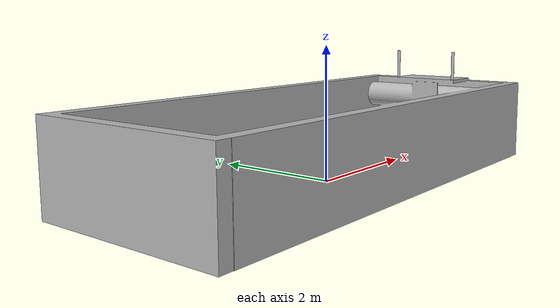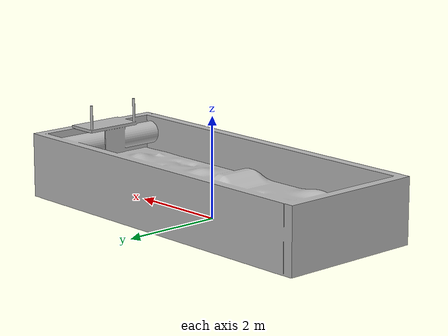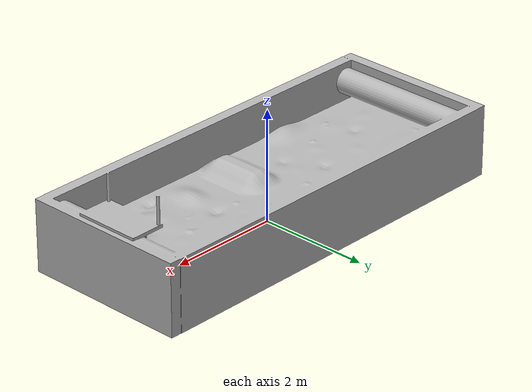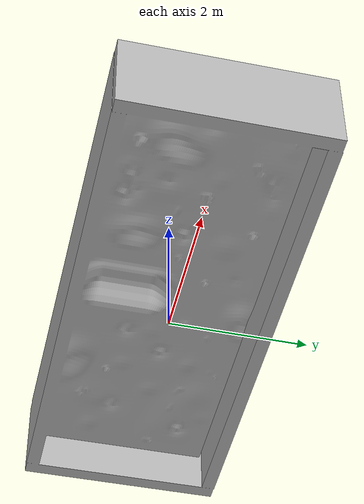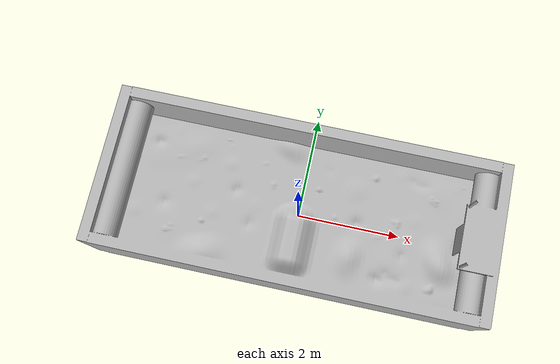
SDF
<?xml version="1.0" ?>
<sdf version="1.5">
  <model name="lunar_arena_test">
    <static>1</static>
    <pose>0 0 0 0 0 0</pose>
    <link name="link">
      <visual name="visual">
        <geometry>
          <mesh><uri>model://lunar_arena_test/meshes/lunar_arena_test.dae</uri></mesh>
        </geometry>
      </visual>
      <collision name="collision">
        <geometry>
          <mesh><uri>model://lunar_arena_test/meshes/lunar_arena_test.dae</uri></mesh>
        </geometry>
      </collision>
    </link>
  </model>
</sdf>
